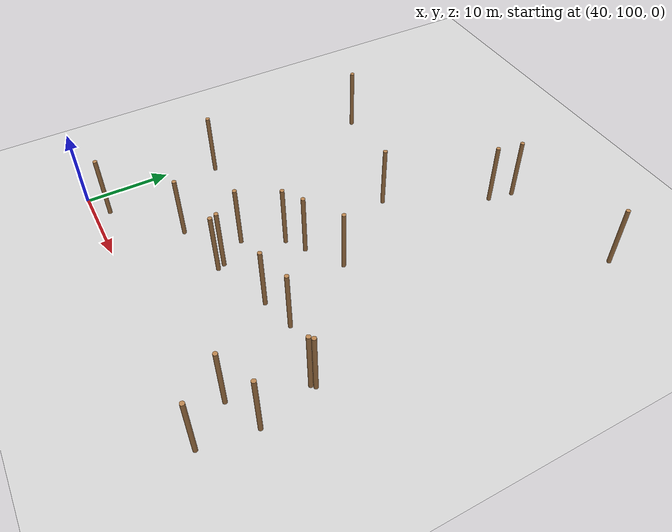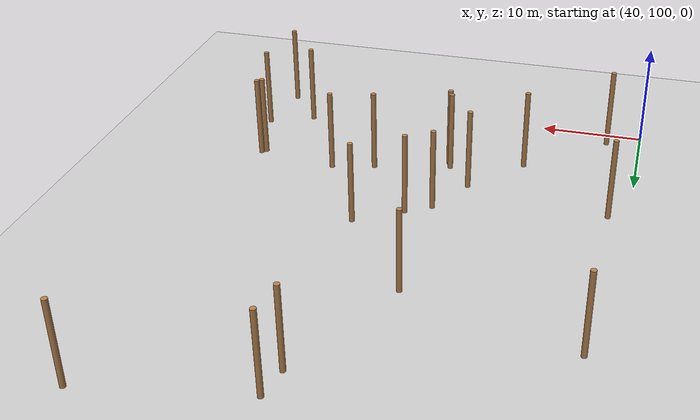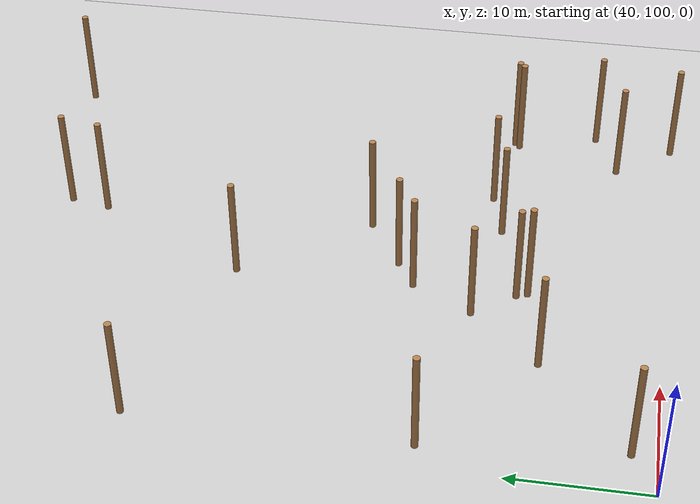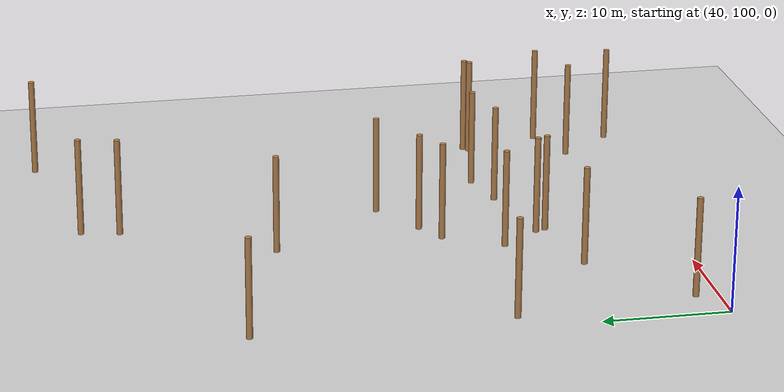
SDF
<sdf version="1.5">
 <world name="padure_tactica">
  <include><uri>model://sun</uri></include>
  <include><uri>model://ground_plane</uri></include>
  <model name="tree_29">
   <static>true</static>
   <pose>78.32 148.97 4.0 0 0 0</pose>
   <link name="link">
    <collision name="collision">
     <geometry><cylinder><radius>0.25</radius><length>8.0</length></cylinder></geometry>
    </collision>
    <visual name="visual">
     <geometry><cylinder><radius>0.25</radius><length>8.0</length></cylinder></geometry>
     <material>
      <script><uri>file://media/materials/scripts/gazebo.material</uri><name>Gazebo/Wood</name></script>
     </material>
    </visual>
   </link>
  </model>
  <model name="tree_36">
   <static>true</static>
   <pose>41.94 115.94 4.0 0 0 0</pose>
   <link name="link">
    <collision name="collision">
     <geometry><cylinder><radius>0.25</radius><length>8.0</length></cylinder></geometry>
    </collision>
    <visual name="visual">
     <geometry><cylinder><radius>0.25</radius><length>8.0</length></cylinder></geometry>
     <material>
      <script><uri>file://media/materials/scripts/gazebo.material</uri><name>Gazebo/Wood</name></script>
     </material>
    </visual>
   </link>
  </model>
  <model name="tree_37">
   <static>true</static>
   <pose>60.16 119.67 4.0 0 0 0</pose>
   <link name="link">
    <collision name="collision">
     <geometry><cylinder><radius>0.25</radius><length>8.0</length></cylinder></geometry>
    </collision>
    <visual name="visual">
     <geometry><cylinder><radius>0.25</radius><length>8.0</length></cylinder></geometry>
     <material>
      <script><uri>file://media/materials/scripts/gazebo.material</uri><name>Gazebo/Wood</name></script>
     </material>
    </visual>
   </link>
  </model>
  <model name="tree_50">
   <static>true</static>
   <pose>77.01 112.30 4.0 0 0 0</pose>
   <link name="link">
    <collision name="collision">
     <geometry><cylinder><radius>0.25</radius><length>8.0</length></cylinder></geometry>
    </collision>
    <visual name="visual">
     <geometry><cylinder><radius>0.25</radius><length>8.0</length></cylinder></geometry>
     <material>
      <script><uri>file://media/materials/scripts/gazebo.material</uri><name>Gazebo/Wood</name></script>
     </material>
    </visual>
   </link>
  </model>
  <model name="tree_98">
   <static>true</static>
   <pose>76.62 111.93 4.0 0 0 0</pose>
   <link name="link">
    <collision name="collision">
     <geometry><cylinder><radius>0.25</radius><length>8.0</length></cylinder></geometry>
    </collision>
    <visual name="visual">
     <geometry><cylinder><radius>0.25</radius><length>8.0</length></cylinder></geometry>
     <material>
      <script><uri>file://media/materials/scripts/gazebo.material</uri><name>Gazebo/Wood</name></script>
     </material>
    </visual>
   </link>
  </model>
  <model name="tree_264">
   <static>true</static>
   <pose>57.82 110.60 4.0 0 0 0</pose>
   <link name="link">
    <collision name="collision">
     <geometry><cylinder><radius>0.25</radius><length>8.0</length></cylinder></geometry>
    </collision>
    <visual name="visual">
     <geometry><cylinder><radius>0.25</radius><length>8.0</length></cylinder></geometry>
     <material>
      <script><uri>file://media/materials/scripts/gazebo.material</uri><name>Gazebo/Wood</name></script>
     </material>
    </visual>
   </link>
  </model>
  <model name="tree_366">
   <static>true</static>
   <pose>63.98 146.37 4.0 0 0 0</pose>
   <link name="link">
    <collision name="collision">
     <geometry><cylinder><radius>0.25</radius><length>8.0</length></cylinder></geometry>
    </collision>
    <visual name="visual">
     <geometry><cylinder><radius>0.25</radius><length>8.0</length></cylinder></geometry>
     <material>
      <script><uri>file://media/materials/scripts/gazebo.material</uri><name>Gazebo/Wood</name></script>
     </material>
    </visual>
   </link>
  </model>
  <model name="tree_431">
   <static>true</static>
   <pose>57.55 131.59 4.0 0 0 0</pose>
   <link name="link">
    <collision name="collision">
     <geometry><cylinder><radius>0.25</radius><length>8.0</length></cylinder></geometry>
    </collision>
    <visual name="visual">
     <geometry><cylinder><radius>0.25</radius><length>8.0</length></cylinder></geometry>
     <material>
      <script><uri>file://media/materials/scripts/gazebo.material</uri><name>Gazebo/Wood</name></script>
     </material>
    </visual>
   </link>
  </model>
  <model name="tree_670">
   <static>true</static>
   <pose>50.85 108.47 4.0 0 0 0</pose>
   <link name="link">
    <collision name="collision">
     <geometry><cylinder><radius>0.25</radius><length>8.0</length></cylinder></geometry>
    </collision>
    <visual name="visual">
     <geometry><cylinder><radius>0.25</radius><length>8.0</length></cylinder></geometry>
     <material>
      <script><uri>file://media/materials/scripts/gazebo.material</uri><name>Gazebo/Wood</name></script>
     </material>
    </visual>
   </link>
  </model>
  <model name="tree_721">
   <static>true</static>
   <pose>65.13 112.33 4.0 0 0 0</pose>
   <link name="link">
    <collision name="collision">
     <geometry><cylinder><radius>0.25</radius><length>8.0</length></cylinder></geometry>
    </collision>
    <visual name="visual">
     <geometry><cylinder><radius>0.25</radius><length>8.0</length></cylinder></geometry>
     <material>
      <script><uri>file://media/materials/scripts/gazebo.material</uri><name>Gazebo/Wood</name></script>
     </material>
    </visual>
   </link>
  </model>
  <model name="tree_722">
   <static>true</static>
   <pose>77.63 99.58 4.0 0 0 0</pose>
   <link name="link">
    <collision name="collision">
     <geometry><cylinder><radius>0.25</radius><length>8.0</length></cylinder></geometry>
    </collision>
    <visual name="visual">
     <geometry><cylinder><radius>0.25</radius><length>8.0</length></cylinder></geometry>
     <material>
      <script><uri>file://media/materials/scripts/gazebo.material</uri><name>Gazebo/Wood</name></script>
     </material>
    </visual>
   </link>
  </model>
  <model name="tree_803">
   <static>true</static>
   <pose>58.13 109.79 4.0 0 0 0</pose>
   <link name="link">
    <collision name="collision">
     <geometry><cylinder><radius>0.25</radius><length>8.0</length></cylinder></geometry>
    </collision>
    <visual name="visual">
     <geometry><cylinder><radius>0.25</radius><length>8.0</length></cylinder></geometry>
     <material>
      <script><uri>file://media/materials/scripts/gazebo.material</uri><name>Gazebo/Wood</name></script>
     </material>
    </visual>
   </link>
  </model>
  <model name="tree_805">
   <static>true</static>
   <pose>43.30 101.79 4.0 0 0 0</pose>
   <link name="link">
    <collision name="collision">
     <geometry><cylinder><radius>0.25</radius><length>8.0</length></cylinder></geometry>
    </collision>
    <visual name="visual">
     <geometry><cylinder><radius>0.25</radius><length>8.0</length></cylinder></geometry>
     <material>
      <script><uri>file://media/materials/scripts/gazebo.material</uri><name>Gazebo/Wood</name></script>
     </material>
    </visual>
   </link>
  </model>
  <model name="tree_923">
   <static>true</static>
   <pose>69.18 113.35 4.0 0 0 0</pose>
   <link name="link">
    <collision name="collision">
     <geometry><cylinder><radius>0.25</radius><length>8.0</length></cylinder></geometry>
    </collision>
    <visual name="visual">
     <geometry><cylinder><radius>0.25</radius><length>8.0</length></cylinder></geometry>
     <material>
      <script><uri>file://media/materials/scripts/gazebo.material</uri><name>Gazebo/Wood</name></script>
     </material>
    </visual>
   </link>
  </model>
  <model name="tree_941">
   <static>true</static>
   <pose>41.95 136.04 4.0 0 0 0</pose>
   <link name="link">
    <collision name="collision">
     <geometry><cylinder><radius>0.25</radius><length>8.0</length></cylinder></geometry>
    </collision>
    <visual name="visual">
     <geometry><cylinder><radius>0.25</radius><length>8.0</length></cylinder></geometry>
     <material>
      <script><uri>file://media/materials/scripts/gazebo.material</uri><name>Gazebo/Wood</name></script>
     </material>
    </visual>
   </link>
  </model>
  <model name="tree_990">
   <static>true</static>
   <pose>63.40 143.33 4.0 0 0 0</pose>
   <link name="link">
    <collision name="collision">
     <geometry><cylinder><radius>0.25</radius><length>8.0</length></cylinder></geometry>
    </collision>
    <visual name="visual">
     <geometry><cylinder><radius>0.25</radius><length>8.0</length></cylinder></geometry>
     <material>
      <script><uri>file://media/materials/scripts/gazebo.material</uri><name>Gazebo/Wood</name></script>
     </material>
    </visual>
   </link>
  </model>
  <model name="tree_1035">
   <static>true</static>
   <pose>78.50 105.71 4.0 0 0 0</pose>
   <link name="link">
    <collision name="collision">
     <geometry><cylinder><radius>0.25</radius><length>8.0</length></cylinder></geometry>
    </collision>
    <visual name="visual">
     <geometry><cylinder><radius>0.25</radius><length>8.0</length></cylinder></geometry>
     <material>
      <script><uri>file://media/materials/scripts/gazebo.material</uri><name>Gazebo/Wood</name></script>
     </material>
    </visual>
   </link>
  </model>
  <model name="tree_1051">
   <static>true</static>
   <pose>74.29 103.88 4.0 0 0 0</pose>
   <link name="link">
    <collision name="collision">
     <geometry><cylinder><radius>0.25</radius><length>8.0</length></cylinder></geometry>
    </collision>
    <visual name="visual">
     <geometry><cylinder><radius>0.25</radius><length>8.0</length></cylinder></geometry>
     <material>
      <script><uri>file://media/materials/scripts/gazebo.material</uri><name>Gazebo/Wood</name></script>
     </material>
    </visual>
   </link>
  </model>
  <model name="tree_1105">
   <static>true</static>
   <pose>57.88 118.27 4.0 0 0 0</pose>
   <link name="link">
    <collision name="collision">
     <geometry><cylinder><radius>0.25</radius><length>8.0</length></cylinder></geometry>
    </collision>
    <visual name="visual">
     <geometry><cylinder><radius>0.25</radius><length>8.0</length></cylinder></geometry>
     <material>
      <script><uri>file://media/materials/scripts/gazebo.material</uri><name>Gazebo/Wood</name></script>
     </material>
    </visual>
   </link>
  </model>
  <model name="tree_1116">
   <static>true</static>
   <pose>64.43 122.34 4.0 0 0 0</pose>
   <link name="link">
    <collision name="collision">
     <geometry><cylinder><radius>0.25</radius><length>8.0</length></cylinder></geometry>
    </collision>
    <visual name="visual">
     <geometry><cylinder><radius>0.25</radius><length>8.0</length></cylinder></geometry>
     <material>
      <script><uri>file://media/materials/scripts/gazebo.material</uri><name>Gazebo/Wood</name></script>
     </material>
    </visual>
   </link>
  </model>
  <model name="tree_1137">
   <static>true</static>
   <pose>55.44 113.71 4.0 0 0 0</pose>
   <link name="link">
    <collision name="collision">
     <geometry><cylinder><radius>0.25</radius><length>8.0</length></cylinder></geometry>
    </collision>
    <visual name="visual">
     <geometry><cylinder><radius>0.25</radius><length>8.0</length></cylinder></geometry>
     <material>
      <script><uri>file://media/materials/scripts/gazebo.material</uri><name>Gazebo/Wood</name></script>
     </material>
    </visual>
   </link>
  </model>
 </world>
</sdf>
